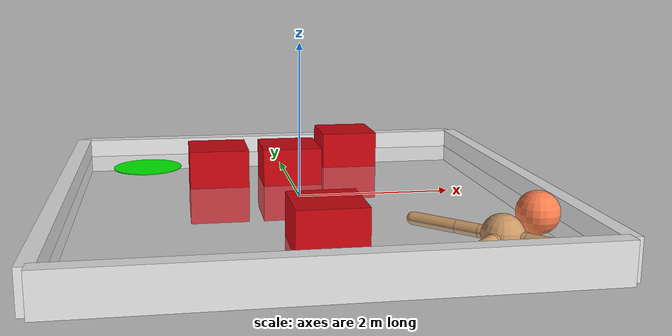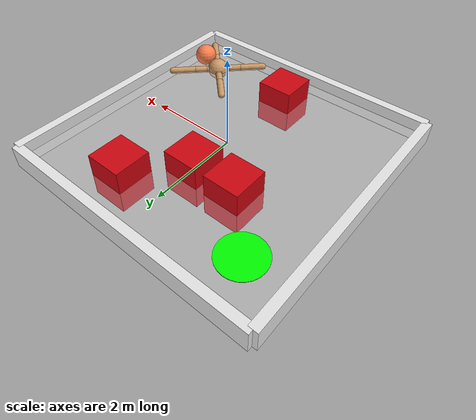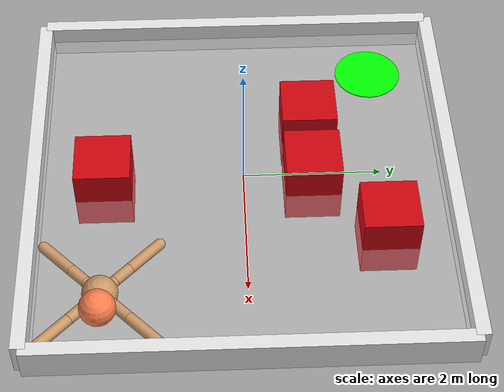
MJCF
<mujoco model="snake">
	<compiler inertiafromgeom="true" angle="degree" coordinate="local" />
  	<custom>
    		<numeric name="frame_skip" data="50" />
	</custom>
	<custom>
    		<numeric name="init_qpos" data="0.0 0.0 0.55 1.0 0.0 0.0 0.0 0.0 1.0 0.0 -1.0 0.0 -1.0 0.0 1.0" />
	</custom>
	<option integrator="RK4" timestep="0.005"/>
  	<default>
    		<geom contype='1' conaffinity='1' condim='1' rgba='0.8 0.6 .4 1' />
 	</default>

	<asset>
		<texture name="texgeom" type="cube" builtin="flat" mark="cross" width="127" height="1278" rgb1="0.8 0.6 0.4" rgb2="0.8 0.6 0.4" markrgb="1 1 1" random="0.01" />
		<material name='geom' texture="texgeom" texuniform="true" />
	</asset>

	<worldbody>
		<light diffuse=".2 .2 .2" dir="0 0 -1" pos="0 0 2" />
		<!--light cutoff="100" diffuse="1 1 1" dir="-0 0 -1.3" directional="true" exponent="1" pos="0 0 1.3" specular=".1 .1 .1"/-->
		<geom conaffinity="1" contype="1" pos="0 0 0" size="3 3 0.1" rgba="0.9 0.9 0.9 1" type="plane" />

		<body name="torso" pos="2 -2 0">
      			<geom name="torso_geom" pos="0 0 0" size="0.25 0.25 0.25" type="ellipsoid"/>
      			<geom name="head" density="0.01" rgba="1.0 0.5 0.3 1" pos="0.4 0 0.25" size="0.25" type="sphere"/>
      			<joint armature="0" damping="0" limited="false" margin="0.01" name="root" pos="0 0 0" type="free"/>
      			<body name="front_left_leg" pos="0 0 0">
        			<geom fromto="0.0 0.0 0.0 0.2 0.2 0.0" name="aux_1_geom" size="0.08" type="capsule"/>
        			<body name="aux_1" pos="0.2 0.2 0">
          				<joint axis="0 0 1" name="hip_1" pos="0.0 0.0 0.0" range="-30 30" type="hinge"/>
          				<geom fromto="0.0 0.0 0.0 0.2 0.2 0.0" name="left_leg_geom" size="0.08" type="capsule"/>
          				<body pos="0.2 0.2 0">
            					<joint axis="-1 1 0" name="ankle_1" pos="0.0 0.0 0.0" range="30 70" type="hinge"/>
            					<geom fromto="0.0 0.0 0.0 0.4 0.4 0.0" name="left_ankle_geom" size="0.08" type="capsule"/>
          				</body>
        			</body>
      			</body>
      			<body name="front_right_leg" pos="0 0 0">
        			<geom fromto="0.0 0.0 0.0 -0.2 0.2 0.0" name="aux_2_geom" size="0.08" type="capsule"/>
        			<body name="aux_2" pos="-0.2 0.2 0">
          				<joint axis="0 0 1" name="hip_2" pos="0.0 0.0 0.0" range="-30 30" type="hinge"/>
          				<geom fromto="0.0 0.0 0.0 -0.2 0.2 0.0" name="right_leg_geom" size="0.08" type="capsule"/>
          				<body pos="-0.2 0.2 0">
            					<joint axis="1 1 0" name="ankle_2" pos="0.0 0.0 0.0" range="-70 -30" type="hinge"/>
            					<geom fromto="0.0 0.0 0.0 -0.4 0.4 0.0" name="right_ankle_geom" size="0.08" type="capsule"/>
          				</body>
        			</body>
      			</body>
      			<body name="back_leg" pos="0 0 0">
        			<geom fromto="0.0 0.0 0.0 -0.2 -0.2 0.0" name="aux_3_geom" size="0.08" type="capsule"/>
        			<body name="aux_3" pos="-0.2 -0.2 0">
          				<joint axis="0 0 1" name="hip_3" pos="0.0 0.0 0.0" range="-30 30" type="hinge"/>
          				<geom fromto="0.0 0.0 0.0 -0.2 -0.2 0.0" name="back_leg_geom" size="0.08" type="capsule"/>
          				<body pos="-0.2 -0.2 0">
            					<joint axis="-1 1 0" name="ankle_3" pos="0.0 0.0 0.0" range="-70 -30" type="hinge"/>
            					<geom fromto="0.0 0.0 0.0 -0.4 -0.4 0.0" name="third_ankle_geom" size="0.08" type="capsule"/>
          				</body>
        			</body>
      			</body>
      			<body name="right_back_leg" pos="0 0 0">
        			<geom fromto="0.0 0.0 0.0 0.2 -0.2 0.0" name="aux_4_geom" size="0.08" type="capsule"/>
        			<body name="aux_4" pos="0.2 -0.2 0">
          				<joint axis="0 0 1" name="hip_4" pos="0.0 0.0 0.0" range="-30 30" type="hinge"/>
          				<geom fromto="0.0 0.0 0.0 0.2 -0.2 0.0" name="rightback_leg_geom" size="0.08" type="capsule"/>
          				<body pos="0.2 -0.2 0">
            					<joint axis="1 1 0" name="ankle_4" pos="0.0 0.0 0.0" range="30 70" type="hinge"/>
            					<geom fromto="0.0 0.0 0.0 0.4 -0.4 0.0" name="fourth_ankle_geom" size="0.08" type="capsule"/>
          				</body>
        			</body>
      			</body>
    		</body>

		<geom pos="0 3 0" conaffinity="1" rgba="0.9 0.9 0.9 1" size="3 0.1 0.25" type="box"/>
    		<geom pos="0 -3 0" conaffinity="1" rgba="0.9 0.9 0.9 1" size="3 0.1 0.25" type="box"/>
    		<geom pos="3 0 0" conaffinity="1" rgba="0.9 0.9 0.9 1" size="0.1 3 0.25" type="box"/>
		<geom pos="-3 0 0" conaffinity="1" rgba="0.9 0.9 0.9 1" size="0.1 3 0.25" type="box"/>

		<body name="obstacle_1" pos="0 1 0 ">
			<geom conaffinity="1" contype="1" name="obstacle_1" pos="0 0 0" rgba="0.81 0.02 0.06 1" size=".4 .4 .5" type="box"/>
			<!--geom conaffinity="1" contype="1" name="obstacle_1" pos="0 0 0.3" rgba="1 0 0 1" size="0.5" type="sphere"/-->
		</body>

		<body name="obstacle_2" pos="-1 1 0 ">
			<geom conaffinity="1" contype="1" name="obstacle_2" pos="0 0 0" rgba="0.81 0.02 0.06 1" size=".4 .4 .5" type="box"/>
			<!--geom conaffinity="1" contype="1" name="obstacle_2" pos="0 0 0.2" rgba="1 0 0 1" size="0.3" type="sphere"/-->
		</body>

		<body name="obstacle_3" pos="0 -2 0 ">
			<geom conaffinity="1" contype="1" name="obstacle_3" pos="0 0 0" rgba="0.81 0.02 0.06 1" size=".4 .4 .5" type="box"/>
			<!--geom conaffinity="1" contype="1" name="obstacle_3" pos="0 0 0.3" rgba="1 0 0 1" size="0.5" type="sphere"/-->
		</body>

		<body name="obstacle_4" pos="1 2 0 ">
			<geom conaffinity="1" contype="1" name="obstacle_4" pos="0 0 0" rgba="0.81 0.02 0.06 1" size=".4 .4 .5" type="box"/>
			<!--geom conaffinity="1" contype="1" name="obstacle_4" pos="0 0 0.3" rgba="1 0 0 1" size="0.5" type="sphere"/-->
		</body>

		<body name="goal" pos = "-2 2 0">
			<geom conaffinity="0" contype="0" density="0.00001" rgba="0 1 0 1" size="0.5 0.005 0.2" type="cylinder"/>
		</body>

	</worldbody>

  	<actuator>
    		<motor ctrllimited="true" ctrlrange="-1.0 1.0" joint="hip_4" gear="150"/>
    		<motor ctrllimited="true" ctrlrange="-1.0 1.0" joint="ankle_4" gear="150"/>
    		<motor ctrllimited="true" ctrlrange="-1.0 1.0" joint="hip_1" gear="150"/>
    		<motor ctrllimited="true" ctrlrange="-1.0 1.0" joint="ankle_1" gear="150"/>
    		<motor ctrllimited="true" ctrlrange="-1.0 1.0" joint="hip_2" gear="150"/>
    		<motor ctrllimited="true" ctrlrange="-1.0 1.0" joint="ankle_2" gear="150"/>
    		<motor ctrllimited="true" ctrlrange="-1.0 1.0" joint="hip_3" gear="150"/>
    		<motor ctrllimited="true" ctrlrange="-1.0 1.0" joint="ankle_3" gear="150"/>
  	</actuator>
  	<sensor>
    		<jointpos name='pos_hip_1' joint='hip_1' />
    		<jointpos name='pos_hip_2' joint='hip_2' />
    		<jointpos name='pos_hip_3' joint='hip_3' />
    		<jointpos name='pos_hip_4' joint='hip_4' />
    		<jointpos name='pos_ankle_1' joint='ankle_1' />
    		<jointpos name='pos_ankle_2' joint='ankle_2' />
    		<jointpos name='pos_ankle_3' joint='ankle_3' />
    		<jointpos name='pos_ankle_4' joint='ankle_4' />

    		<jointvel name='vel_hip_1'   joint='hip_1' />
    		<jointvel name='vel_hip_2'   joint='hip_2' />
    		<jointvel name='vel_hip_3'   joint='hip_3' />
    		<jointvel name='vel_hip_4'   joint='hip_4' />
    		<jointvel name='vel_ankle_1' joint='ankle_1' />
   		<jointvel name='vel_ankle_2' joint='ankle_2' />
    		<jointvel name='vel_ankle_3' joint='ankle_3' />
    		<jointvel name='vel_ankle_4' joint='ankle_4' />
  	</sensor>

</mujoco>
